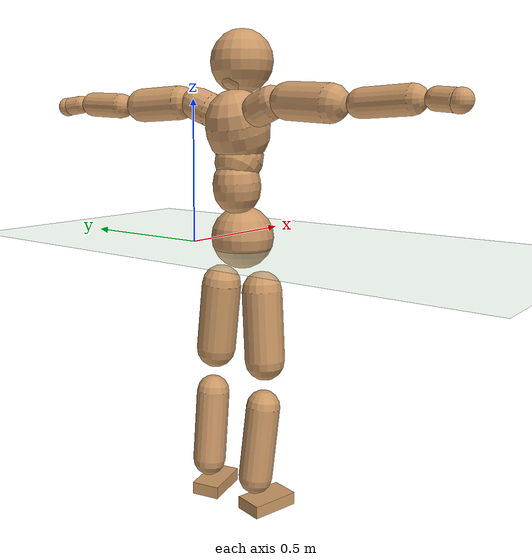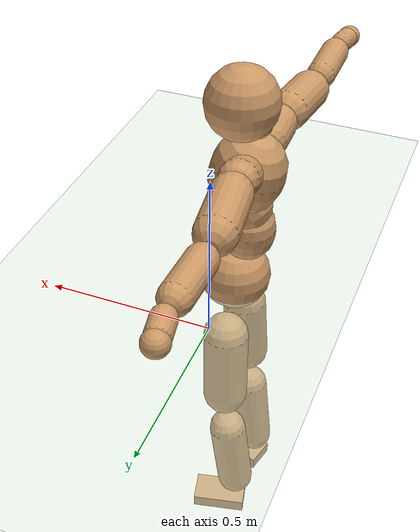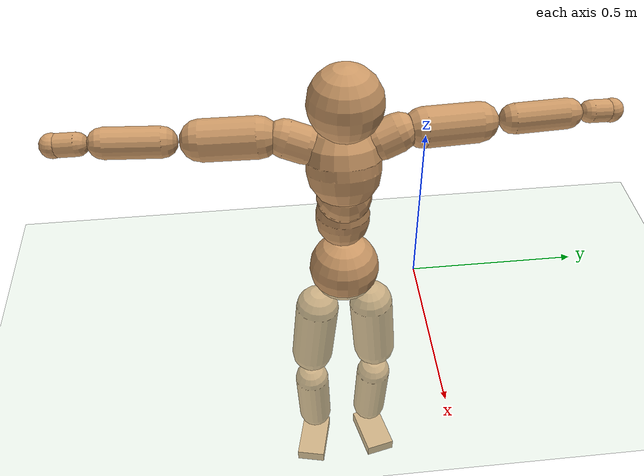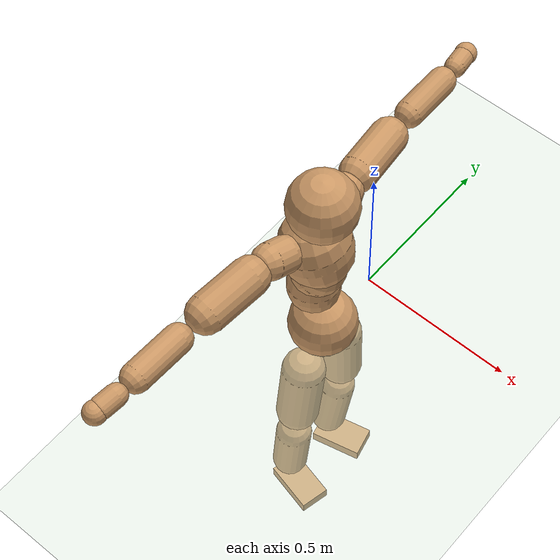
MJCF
<mujoco model="humanoid">
  <compiler coordinate="local"/>
  <default>
    <joint damping="0.0" armature="0.01" stiffness="0.0" limited="true"/>
    <geom conaffinity="1" condim="3" contype="7" margin="0.001" rgba="0.8 0.6 .4 1"/>
  </default>
  <asset>
    <texture type="skybox" builtin="gradient" rgb1=".4 .5 .6" rgb2="0 0 0" width="100" height="100"/>
    <texture builtin="flat" height="1278" mark="cross" markrgb="1 1 1" name="texgeom" random="0.01" rgb1="0.8 0.6 0.4" rgb2="0.8 0.6 0.4" type="cube" width="127"/>
    <texture builtin="checker" height="100" name="texplane" rgb1="0 0 0" rgb2="0.8 0.8 0.8" type="2d" width="100"/>
    <material name="MatPlane" reflectance="0.5" shininess="1" specular="1" texrepeat="60 60" texture="texplane"/>
    <material name="geom" texture="texgeom" texuniform="true"/>
  </asset>
  <worldbody>
    <light cutoff="100" diffuse="1 1 1" dir="-0 0 -1.3" directional="true" exponent="1" pos="0 0 1.3" specular=".1 .1 .1"/>
    <geom conaffinity="1" condim="3" name="floor" pos="0 0 0" rgba="0.8 0.9 0.8 1" size="100 100 .2" type="plane" material="MatPlane"/>
    <body name="Pelvis" pos="0.0006 -0.2181 0.0382">
      <freejoint name="Pelvis"/>
      <geom type="sphere" contype="1" conaffinity="1" density="500" size="0.1067" pos="0.0000 0.0000 0.0000" name="Pelvis"/>
      <body name="L_Hip" pos="-0.0033 0.0819 -0.0969">
        <joint name="L_Hip_x" type="hinge" pos="0 0 0" axis="1 0 0" stiffness="800" damping="80" armature="0.02" range="-180.0000 180.0000"/>
        <joint name="L_Hip_y" type="hinge" pos="0 0 0" axis="0 1 0" stiffness="800" damping="80" armature="0.02" range="-180.0000 180.0000"/>
        <joint name="L_Hip_z" type="hinge" pos="0 0 0" axis="0 0 1" stiffness="800" damping="80" armature="0.02" range="-180.0000 180.0000"/>
        <geom type="capsule" contype="1" conaffinity="1" density="500" fromto="-0.0029 0.0060 -0.0782 -0.0114 0.0242 -0.3127" size="0.0694" name="L_Hip"/>
        <body name="L_Knee" pos="-0.0143 0.0302 -0.3908">
          <joint name="L_Knee_x" type="hinge" pos="0 0 0" axis="1 0 0" stiffness="800" damping="80" armature="0.02" range="-180.0000 180.0000"/>
          <joint name="L_Knee_y" type="hinge" pos="0 0 0" axis="0 1 0" stiffness="800" damping="80" armature="0.02" range="-180.0000 180.0000"/>
          <joint name="L_Knee_z" type="hinge" pos="0 0 0" axis="0 0 1" stiffness="800" damping="80" armature="0.02" range="-180.0000 180.0000"/>
          <geom type="capsule" contype="1" conaffinity="1" density="500" fromto="-0.0102 -0.0023 -0.0832 -0.0406 -0.0091 -0.3327" size="0.0586" name="L_Knee"/>
          <body name="L_Ankle" pos="-0.0508 -0.0114 -0.4159">
            <joint name="L_Ankle_x" type="hinge" pos="0 0 0" axis="1 0 0" stiffness="800" damping="80" armature="0.02" range="-180.0000 180.0000"/>
            <joint name="L_Ankle_y" type="hinge" pos="0 0 0" axis="0 1 0" stiffness="800" damping="80" armature="0.02" range="-180.0000 180.0000"/>
            <joint name="L_Ankle_z" type="hinge" pos="0 0 0" axis="0 0 1" stiffness="800" damping="80" armature="0.02" range="-180.0000 180.0000"/>
            <geom type="box" contype="1" conaffinity="1" density="500" pos="0.0601 0.0139 -0.0297" size="0.0864 0.0502 0.0219" quat="0.9935 0.0000 0.0000 0.1134" name="L_Ankle"/>
            <body name="L_Toe" pos="0.1201 0.0278 -0.0594">
              <joint name="L_Toe_x" type="hinge" pos="0 0 0" axis="1 0 0" stiffness="500" damping="50" armature="0.02" range="-180.0000 180.0000"/>
              <joint name="L_Toe_y" type="hinge" pos="0 0 0" axis="0 1 0" stiffness="500" damping="50" armature="0.02" range="-180.0000 180.0000"/>
              <joint name="L_Toe_z" type="hinge" pos="0 0 0" axis="0 0 1" stiffness="500" damping="50" armature="0.02" range="-180.0000 180.0000"/>
              <geom type="box" contype="1" conaffinity="1" density="500" pos="0.0000 0.0000 0.0298" size="0.001 0.0025 0.0011" quat="0.9929 0.0000 0.0000 0.1193" name="L_Toe"/>
            </body>
          </body>
        </body>
      </body>
      <body name="R_Hip" pos="0 -0.079 -0.0968">
        <joint name="R_Hip_x" type="hinge" pos="0 0 0" axis="1 0 0" stiffness="800" damping="80" armature="0.02" range="-180.0000 180.0000"/>
        <joint name="R_Hip_y" type="hinge" pos="0 0 0" axis="0 1 0" stiffness="800" damping="80" armature="0.02" range="-180.0000 180.0000"/>
        <joint name="R_Hip_z" type="hinge" pos="0 0 0" axis="0 0 1" stiffness="800" damping="80" armature="0.02" range="-180.0000 180.0000"/>
        <geom type="capsule" contype="1" conaffinity="1" density="500" fromto="-0.0033 -0.0075 -0.0792 -0.0131 -0.0300 -0.3170" size="0.0685" name="R_Hip"/>
        <body name="R_Knee" pos="-0.0164 -0.0375 -0.3962">
          <joint name="R_Knee_x" type="hinge" pos="0 0 0" axis="1 0 0" stiffness="800" damping="80" armature="0.02" range="-180.0000 180.0000"/>
          <joint name="R_Knee_y" type="hinge" pos="0 0 0" axis="0 1 0" stiffness="800" damping="80" armature="0.02" range="-180.0000 180.0000"/>
          <joint name="R_Knee_z" type="hinge" pos="0 0 0" axis="0 0 1" stiffness="800" damping="80" armature="0.02" range="-180.0000 180.0000"/>
          <geom type="capsule" contype="1" conaffinity="1" density="500" fromto="-0.0099 0.0028 -0.0835 -0.0396 0.0111 -0.3338" size="0.0586" name="R_Knee"/>
          <body name="R_Ankle" pos="-0.0495 0.0139 -0.4173">
            <joint name="R_Ankle_x" type="hinge" pos="0 0 0" axis="1 0 0" stiffness="800" damping="80" armature="0.02" range="-180.0000 180.0000"/>
            <joint name="R_Ankle_y" type="hinge" pos="0 0 0" axis="0 1 0" stiffness="800" damping="80" armature="0.02" range="-180.0000 180.0000"/>
            <joint name="R_Ankle_z" type="hinge" pos="0 0 0" axis="0 0 1" stiffness="800" damping="80" armature="0.02" range="-180.0000 180.0000"/>
            <geom type="box" contype="1" conaffinity="1" density="500" pos="0.0622 -0.0146 -0.0255" size="0.0876 0.0494 0.022" quat="0.9934 0.0000 0.0000 -0.1149" name="R_Ankle"/>
            <body name="R_Toe" pos="0.1245 -0.0292 -0.0511">
              <joint name="R_Toe_x" type="hinge" pos="0 0 0" axis="1 0 0" stiffness="500" damping="50" armature="0.02" range="-180.0000 180.0000"/>
              <joint name="R_Toe_y" type="hinge" pos="0 0 0" axis="0 1 0" stiffness="500" damping="50" armature="0.02" range="-180.0000 180.0000"/>
              <joint name="R_Toe_z" type="hinge" pos="0 0 0" axis="0 0 1" stiffness="500" damping="50" armature="0.02" range="-180.0000 180.0000"/>
              <geom type="box" contype="1" conaffinity="1" density="500" pos="0.0000 0.0000 0.0274" size="0.0009 0.0024 0.0012" quat="0.9944 0.0000 0.0000 -0.1057" name="R_Toe"/>
            </body>
          </body>
        </body>
      </body>
      <body name="Torso" pos="-0.0312 -0.0024 0.112">
        <joint name="Torso_x" type="hinge" pos="0 0 0" axis="1 0 0" stiffness="1000" damping="100" armature="0.02" range="-180.0000 180.0000"/>
        <joint name="Torso_y" type="hinge" pos="0 0 0" axis="0 1 0" stiffness="1000" damping="100" armature="0.02" range="-180.0000 180.0000"/>
        <joint name="Torso_z" type="hinge" pos="0 0 0" axis="0 0 1" stiffness="1000" damping="100" armature="0.02" range="-180.0000 180.0000"/>
        <geom type="capsule" contype="1" conaffinity="1" density="500" fromto="-0.0031 0.0018 0.0752 -0.0020 0.0012 0.0501" size="0.0802" name="Torso"/>
        <body name="Spine" pos="-0.0051 0.0029 0.1254">
          <joint name="Spine_x" type="hinge" pos="0 0 0" axis="1 0 0" stiffness="1000" damping="100" armature="0.02" range="-180.0000 180.0000"/>
          <joint name="Spine_y" type="hinge" pos="0 0 0" axis="0 1 0" stiffness="1000" damping="100" armature="0.02" range="-180.0000 180.0000"/>
          <joint name="Spine_z" type="hinge" pos="0 0 0" axis="0 0 1" stiffness="1000" damping="100" armature="0.02" range="-180.0000 180.0000"/>
          <geom type="capsule" contype="1" conaffinity="1" density="500" fromto="0.0205 0.0009 0.0307 0.0137 0.0006 0.0204" size="0.0805" name="Spine"/>
          <body name="Chest" pos="0.0342 0.0014 0.0511">
            <joint name="Chest_x" type="hinge" pos="0 0 0" axis="1 0 0" stiffness="1000" damping="100" armature="0.02" range="-180.0000 180.0000"/>
            <joint name="Chest_y" type="hinge" pos="0 0 0" axis="0 1 0" stiffness="1000" damping="100" armature="0.02" range="-180.0000 180.0000"/>
            <joint name="Chest_z" type="hinge" pos="0 0 0" axis="0 0 1" stiffness="1000" damping="100" armature="0.02" range="-180.0000 180.0000"/>
            <geom type="capsule" contype="1" conaffinity="1" density="500" fromto="-0.0290 -0.0005 0.0954 -0.0193 -0.0003 0.0636" size="0.1064" name="Chest"/>
            <body name="Neck" pos="-0.0557 -0.001 0.2243">
              <joint name="Neck_x" type="hinge" pos="0 0 0" axis="1 0 0" stiffness="500" damping="50" armature="0.02" range="-180.0000 180.0000"/>
              <joint name="Neck_y" type="hinge" pos="0 0 0" axis="0 1 0" stiffness="500" damping="50" armature="0.02" range="-180.0000 180.0000"/>
              <joint name="Neck_z" type="hinge" pos="0 0 0" axis="0 0 1" stiffness="500" damping="50" armature="0.02" range="-180.0000 180.0000"/>
              <geom type="capsule" contype="1" conaffinity="1" density="500" fromto="0.0106 0.0004 0.0126 0.0426 0.0017 0.0504" size="0.0438" name="Neck"/>
              <body name="Head" pos="0.0532 0.0021 0.063">
                <joint name="Head_x" type="hinge" pos="0 0 0" axis="1 0 0" stiffness="500" damping="50" armature="0.02" range="-180.0000 180.0000"/>
                <joint name="Head_y" type="hinge" pos="0 0 0" axis="0 1 0" stiffness="500" damping="50" armature="0.02" range="-180.0000 180.0000"/>
                <joint name="Head_z" type="hinge" pos="0 0 0" axis="0 0 1" stiffness="500" damping="50" armature="0.02" range="-180.0000 180.0000"/>
                <geom type="sphere" contype="1" conaffinity="1" density="500" size="0.1034" pos="0.0000 0.0000 0.0000" name="Head"/>
              </body>
            </body>
            <body name="L_Thorax" pos="-0.0417 0.0817 0.1271">
              <joint name="L_Thorax_x" type="hinge" pos="0 0 0" axis="1 0 0" stiffness="500" damping="50" armature="0.02" range="-180.0000 180.0000"/>
              <joint name="L_Thorax_y" type="hinge" pos="0 0 0" axis="0 1 0" stiffness="500" damping="50" armature="0.02" range="-180.0000 180.0000"/>
              <joint name="L_Thorax_z" type="hinge" pos="0 0 0" axis="0 0 1" stiffness="500" damping="50" armature="0.02" range="-180.0000 180.0000"/>
              <geom type="capsule" contype="1" conaffinity="1" density="500" fromto="-0.0021 0.0176 0.0068 -0.0084 0.0704 0.0273" size="0.055" name="L_Thorax"/>
              <body name="L_Shoulder" pos="-0.0105 0.0881 0.0342">
                <joint name="L_Shoulder_x" type="hinge" pos="0 0 0" axis="1 0 0" stiffness="500" damping="50" armature="0.02" range="-720.0000 720.0000"/>
                <joint name="L_Shoulder_y" type="hinge" pos="0 0 0" axis="0 1 0" stiffness="500" damping="50" armature="0.02" range="-720.0000 720.0000"/>
                <joint name="L_Shoulder_z" type="hinge" pos="0 0 0" axis="0 0 1" stiffness="500" damping="50" armature="0.02" range="-720.0000 720.0000"/>
                <geom type="capsule" contype="1" conaffinity="1" density="500" fromto="-0.0063 0.0528 -0.0025 -0.0253 0.2111 -0.0101" size="0.0573" name="L_Shoulder"/>
                <body name="L_Elbow" pos="-0.0316 0.2639 -0.0127">
                  <joint name="L_Elbow_x" type="hinge" pos="0 0 0" axis="1 0 0" stiffness="500" damping="50" armature="0.02" range="-720.0000 720.0000"/>
                  <joint name="L_Elbow_y" type="hinge" pos="0 0 0" axis="0 1 0" stiffness="500" damping="50" armature="0.02" range="-720.0000 720.0000"/>
                  <joint name="L_Elbow_z" type="hinge" pos="0 0 0" axis="0 0 1" stiffness="500" damping="50" armature="0.02" range="-720.0000 720.0000"/>
                  <geom type="capsule" contype="1" conaffinity="1" density="500" fromto="0.0003 0.0501 0.0022 0.0012 0.2002 0.0090" size="0.0431" name="L_Elbow"/>
                  <body name="L_Wrist" pos="0.0016 0.2503 0.0112">
                    <joint name="L_Wrist_x" type="hinge" pos="0 0 0" axis="1 0 0" stiffness="300" damping="30" armature="0.02" range="-180.0000 180.0000"/>
                    <joint name="L_Wrist_y" type="hinge" pos="0 0 0" axis="0 1 0" stiffness="300" damping="30" armature="0.02" range="-180.0000 180.0000"/>
                    <joint name="L_Wrist_z" type="hinge" pos="0 0 0" axis="0 0 1" stiffness="300" damping="30" armature="0.02" range="-180.0000 180.0000"/>
                    <geom type="capsule" contype="1" conaffinity="1" density="500" fromto="-0.0028 0.0169 -0.0020 -0.0111 0.0675 -0.0081" size="0.0322" name="L_Wrist"/>
                    <body name="L_Hand" pos="-0.0139 0.0843 -0.0102">
                      <joint name="L_Hand_x" type="hinge" pos="0 0 0" axis="1 0 0" stiffness="300" damping="30" armature="0.02" range="-180.0000 180.0000"/>
                      <joint name="L_Hand_y" type="hinge" pos="0 0 0" axis="0 1 0" stiffness="300" damping="30" armature="0.02" range="-180.0000 180.0000"/>
                      <joint name="L_Hand_z" type="hinge" pos="0 0 0" axis="0 0 1" stiffness="300" damping="30" armature="0.02" range="-180.0000 180.0000"/>
                      <geom type="sphere" contype="1" conaffinity="1" density="500" size="0.0341" pos="0.0000 0.0000 0.0000" name="L_Hand"/>
                    </body>
                  </body>
                </body>
              </body>
            </body>
            <body name="R_Thorax" pos="-0.0475 -0.0831 0.1253">
              <joint name="R_Thorax_x" type="hinge" pos="0 0 0" axis="1 0 0" stiffness="500" damping="50" armature="0.02" range="-180.0000 180.0000"/>
              <joint name="R_Thorax_y" type="hinge" pos="0 0 0" axis="0 1 0" stiffness="500" damping="50" armature="0.02" range="-180.0000 180.0000"/>
              <joint name="R_Thorax_z" type="hinge" pos="0 0 0" axis="0 0 1" stiffness="500" damping="50" armature="0.02" range="-180.0000 180.0000"/>
              <geom type="capsule" contype="1" conaffinity="1" density="500" fromto="-0.0022 -0.0184 0.0071 -0.0087 -0.0737 0.0284" size="0.0541" name="R_Thorax"/>
              <body name="R_Shoulder" pos="-0.0109 -0.0921 0.0355">
                <joint name="R_Shoulder_x" type="hinge" pos="0 0 0" axis="1 0 0" stiffness="500" damping="50" armature="0.02" range="-720.0000 720.0000"/>
                <joint name="R_Shoulder_y" type="hinge" pos="0 0 0" axis="0 1 0" stiffness="500" damping="50" armature="0.02" range="-720.0000 720.0000"/>
                <joint name="R_Shoulder_z" type="hinge" pos="0 0 0" axis="0 0 1" stiffness="500" damping="50" armature="0.02" range="-720.0000 720.0000"/>
                <geom type="capsule" contype="1" conaffinity="1" density="500" fromto="-0.0052 -0.0520 -0.0030 -0.0207 -0.2081 -0.0122" size="0.0588" name="R_Shoulder"/>
                <body name="R_Elbow" pos="-0.0258 -0.2602 -0.0152">
                  <joint name="R_Elbow_x" type="hinge" pos="0 0 0" axis="1 0 0" stiffness="500" damping="50" armature="0.02" range="-720.0000 720.0000"/>
                  <joint name="R_Elbow_y" type="hinge" pos="0 0 0" axis="0 1 0" stiffness="500" damping="50" armature="0.02" range="-720.0000 720.0000"/>
                  <joint name="R_Elbow_z" type="hinge" pos="0 0 0" axis="0 0 1" stiffness="500" damping="50" armature="0.02" range="-720.0000 720.0000"/>
                  <geom type="capsule" contype="1" conaffinity="1" density="500" fromto="-0.0002 -0.0518 0.0025 -0.0009 -0.2071 0.0098" size="0.0435" name="R_Elbow"/>
                  <body name="R_Wrist" pos="-0.0011 -0.2588 0.0123">
                    <joint name="R_Wrist_x" type="hinge" pos="0 0 0" axis="1 0 0" stiffness="300" damping="30" armature="0.02" range="-180.0000 180.0000"/>
                    <joint name="R_Wrist_y" type="hinge" pos="0 0 0" axis="0 1 0" stiffness="300" damping="30" armature="0.02" range="-180.0000 180.0000"/>
                    <joint name="R_Wrist_z" type="hinge" pos="0 0 0" axis="0 0 1" stiffness="300" damping="30" armature="0.02" range="-180.0000 180.0000"/>
                    <geom type="capsule" contype="1" conaffinity="1" density="500" fromto="-0.0023 -0.0171 -0.0015 -0.0090 -0.0683 -0.0061" size="0.033" name="R_Wrist"/>
                    <body name="R_Hand" pos="-0.0113 -0.0854 -0.0077">
                      <joint name="R_Hand_x" type="hinge" pos="0 0 0" axis="1 0 0" stiffness="300" damping="30" armature="0.02" range="-180.0000 180.0000"/>
                      <joint name="R_Hand_y" type="hinge" pos="0 0 0" axis="0 1 0" stiffness="300" damping="30" armature="0.02" range="-180.0000 180.0000"/>
                      <joint name="R_Hand_z" type="hinge" pos="0 0 0" axis="0 0 1" stiffness="300" damping="30" armature="0.02" range="-180.0000 180.0000"/>
                      <geom type="sphere" contype="1" conaffinity="1" density="500" size="0.0344" pos="0.0000 0.0000 0.0000" name="R_Hand"/>
                    </body>
                  </body>
                </body>
              </body>
            </body>
          </body>
        </body>
      </body>
    </body>
  </worldbody>
  <actuator>
    <motor name="L_Hip_x" joint="L_Hip_x" gear="500"/>
    <motor name="L_Hip_y" joint="L_Hip_y" gear="500"/>
    <motor name="L_Hip_z" joint="L_Hip_z" gear="500"/>
    <motor name="L_Knee_x" joint="L_Knee_x" gear="500"/>
    <motor name="L_Knee_y" joint="L_Knee_y" gear="500"/>
    <motor name="L_Knee_z" joint="L_Knee_z" gear="500"/>
    <motor name="L_Ankle_x" joint="L_Ankle_x" gear="500"/>
    <motor name="L_Ankle_y" joint="L_Ankle_y" gear="500"/>
    <motor name="L_Ankle_z" joint="L_Ankle_z" gear="500"/>
    <motor name="L_Toe_x" joint="L_Toe_x" gear="500"/>
    <motor name="L_Toe_y" joint="L_Toe_y" gear="500"/>
    <motor name="L_Toe_z" joint="L_Toe_z" gear="500"/>
    <motor name="R_Hip_x" joint="R_Hip_x" gear="500"/>
    <motor name="R_Hip_y" joint="R_Hip_y" gear="500"/>
    <motor name="R_Hip_z" joint="R_Hip_z" gear="500"/>
    <motor name="R_Knee_x" joint="R_Knee_x" gear="500"/>
    <motor name="R_Knee_y" joint="R_Knee_y" gear="500"/>
    <motor name="R_Knee_z" joint="R_Knee_z" gear="500"/>
    <motor name="R_Ankle_x" joint="R_Ankle_x" gear="500"/>
    <motor name="R_Ankle_y" joint="R_Ankle_y" gear="500"/>
    <motor name="R_Ankle_z" joint="R_Ankle_z" gear="500"/>
    <motor name="R_Toe_x" joint="R_Toe_x" gear="500"/>
    <motor name="R_Toe_y" joint="R_Toe_y" gear="500"/>
    <motor name="R_Toe_z" joint="R_Toe_z" gear="500"/>
    <motor name="Torso_x" joint="Torso_x" gear="500"/>
    <motor name="Torso_y" joint="Torso_y" gear="500"/>
    <motor name="Torso_z" joint="Torso_z" gear="500"/>
    <motor name="Spine_x" joint="Spine_x" gear="500"/>
    <motor name="Spine_y" joint="Spine_y" gear="500"/>
    <motor name="Spine_z" joint="Spine_z" gear="500"/>
    <motor name="Chest_x" joint="Chest_x" gear="500"/>
    <motor name="Chest_y" joint="Chest_y" gear="500"/>
    <motor name="Chest_z" joint="Chest_z" gear="500"/>
    <motor name="Neck_x" joint="Neck_x" gear="500"/>
    <motor name="Neck_y" joint="Neck_y" gear="500"/>
    <motor name="Neck_z" joint="Neck_z" gear="500"/>
    <motor name="Head_x" joint="Head_x" gear="500"/>
    <motor name="Head_y" joint="Head_y" gear="500"/>
    <motor name="Head_z" joint="Head_z" gear="500"/>
    <motor name="L_Thorax_x" joint="L_Thorax_x" gear="500"/>
    <motor name="L_Thorax_y" joint="L_Thorax_y" gear="500"/>
    <motor name="L_Thorax_z" joint="L_Thorax_z" gear="500"/>
    <motor name="L_Shoulder_x" joint="L_Shoulder_x" gear="500"/>
    <motor name="L_Shoulder_y" joint="L_Shoulder_y" gear="500"/>
    <motor name="L_Shoulder_z" joint="L_Shoulder_z" gear="500"/>
    <motor name="L_Elbow_x" joint="L_Elbow_x" gear="500"/>
    <motor name="L_Elbow_y" joint="L_Elbow_y" gear="500"/>
    <motor name="L_Elbow_z" joint="L_Elbow_z" gear="500"/>
    <motor name="L_Wrist_x" joint="L_Wrist_x" gear="500"/>
    <motor name="L_Wrist_y" joint="L_Wrist_y" gear="500"/>
    <motor name="L_Wrist_z" joint="L_Wrist_z" gear="500"/>
    <motor name="L_Hand_x" joint="L_Hand_x" gear="500"/>
    <motor name="L_Hand_y" joint="L_Hand_y" gear="500"/>
    <motor name="L_Hand_z" joint="L_Hand_z" gear="500"/>
    <motor name="R_Thorax_x" joint="R_Thorax_x" gear="500"/>
    <motor name="R_Thorax_y" joint="R_Thorax_y" gear="500"/>
    <motor name="R_Thorax_z" joint="R_Thorax_z" gear="500"/>
    <motor name="R_Shoulder_x" joint="R_Shoulder_x" gear="500"/>
    <motor name="R_Shoulder_y" joint="R_Shoulder_y" gear="500"/>
    <motor name="R_Shoulder_z" joint="R_Shoulder_z" gear="500"/>
    <motor name="R_Elbow_x" joint="R_Elbow_x" gear="500"/>
    <motor name="R_Elbow_y" joint="R_Elbow_y" gear="500"/>
    <motor name="R_Elbow_z" joint="R_Elbow_z" gear="500"/>
    <motor name="R_Wrist_x" joint="R_Wrist_x" gear="500"/>
    <motor name="R_Wrist_y" joint="R_Wrist_y" gear="500"/>
    <motor name="R_Wrist_z" joint="R_Wrist_z" gear="500"/>
    <motor name="R_Hand_x" joint="R_Hand_x" gear="500"/>
    <motor name="R_Hand_y" joint="R_Hand_y" gear="500"/>
    <motor name="R_Hand_z" joint="R_Hand_z" gear="500"/>
  </actuator>
  <contact>
    <exclude body1="Torso" body2="Chest"/>
    <exclude body1="Head" body2="Chest"/>
    <exclude body1="R_Knee" body2="R_Toe"/>
    <exclude body1="R_Knee" body2="L_Ankle"/>
    <exclude body1="R_Knee" body2="L_Toe"/>
    <exclude body1="L_Knee" body2="L_Toe"/>
    <exclude body1="L_Knee" body2="R_Ankle"/>
    <exclude body1="L_Knee" body2="R_Toe"/>
    <exclude body1="L_Shoulder" body2="Chest"/>
    <exclude body1="R_Shoulder" body2="Chest"/>
  </contact>
  <sensor/>
  <size njmax="700" nconmax="700"/>
</mujoco>
